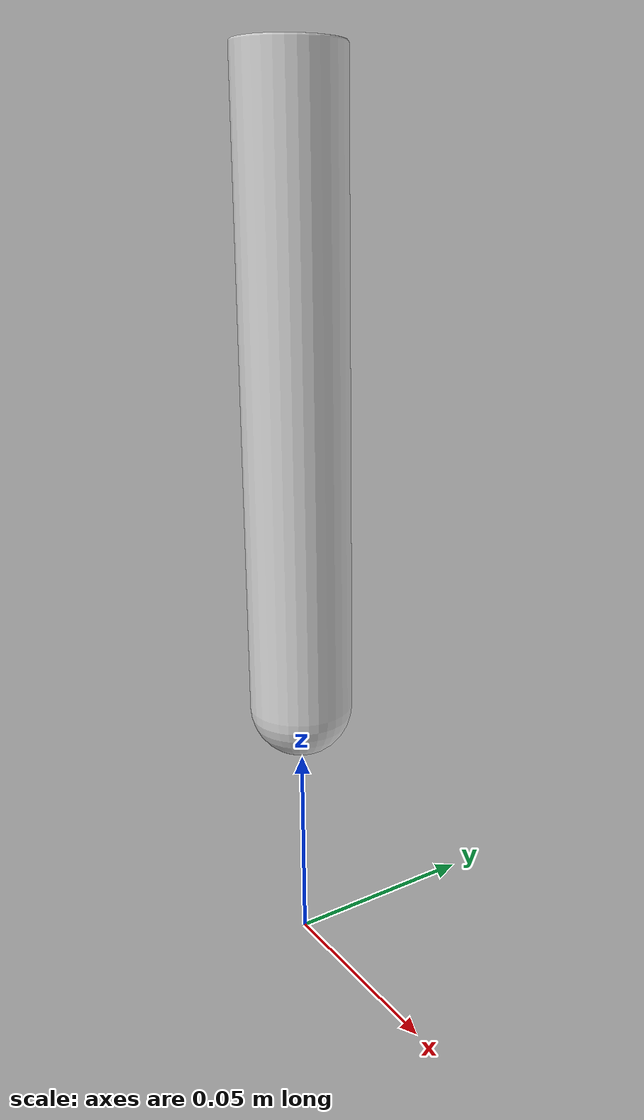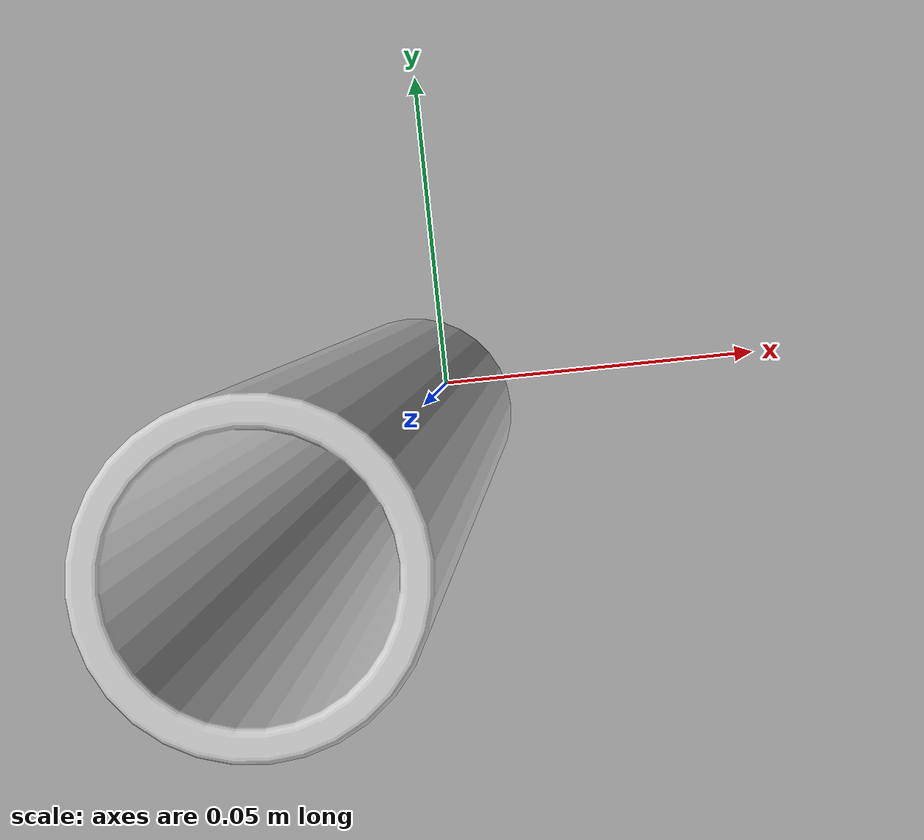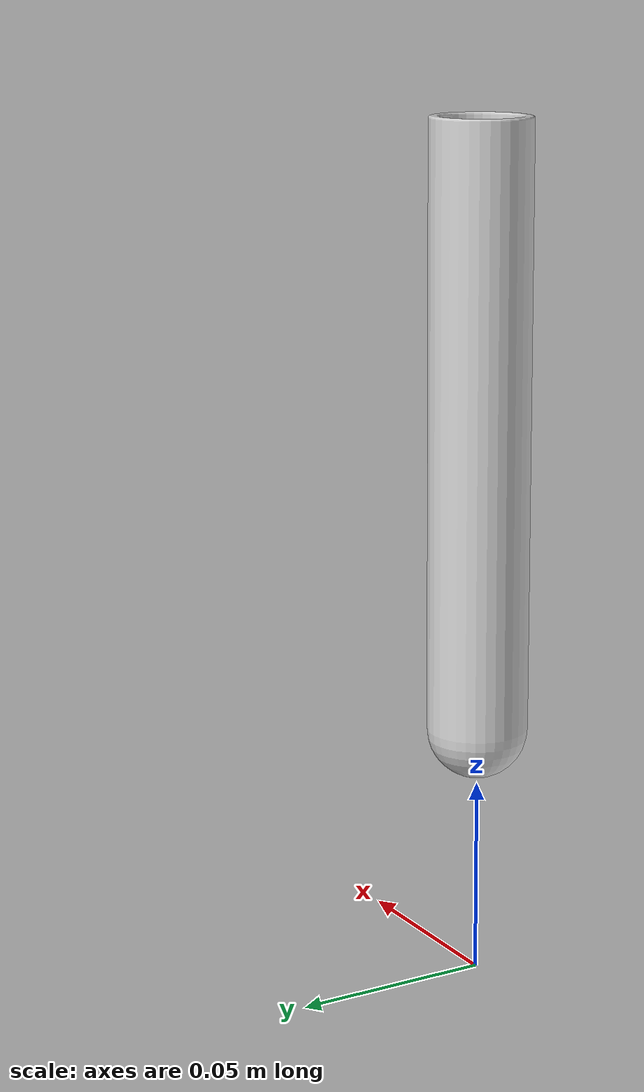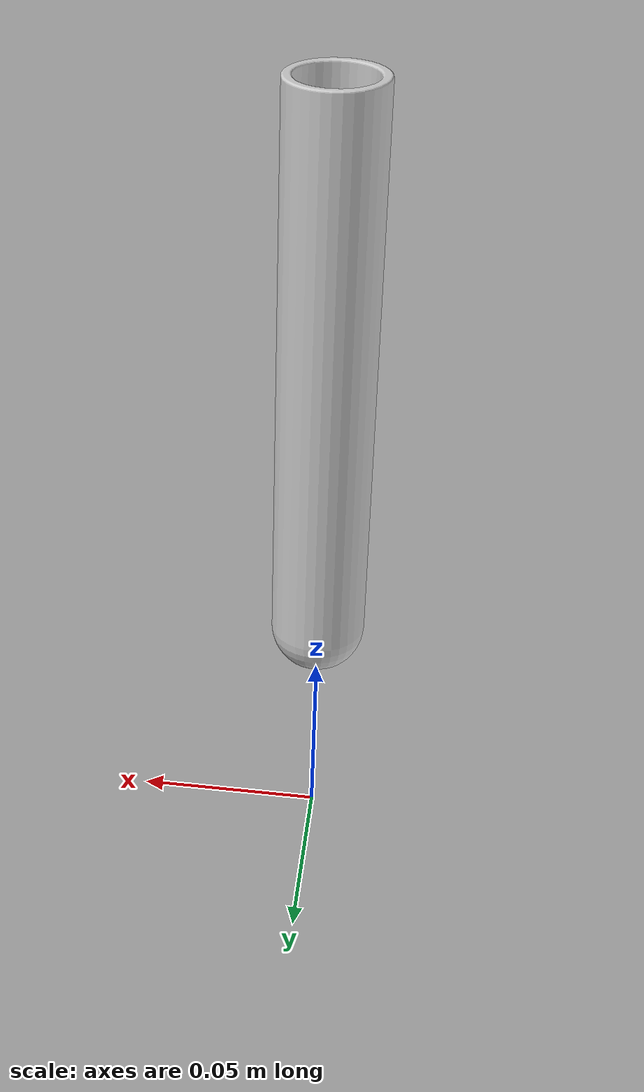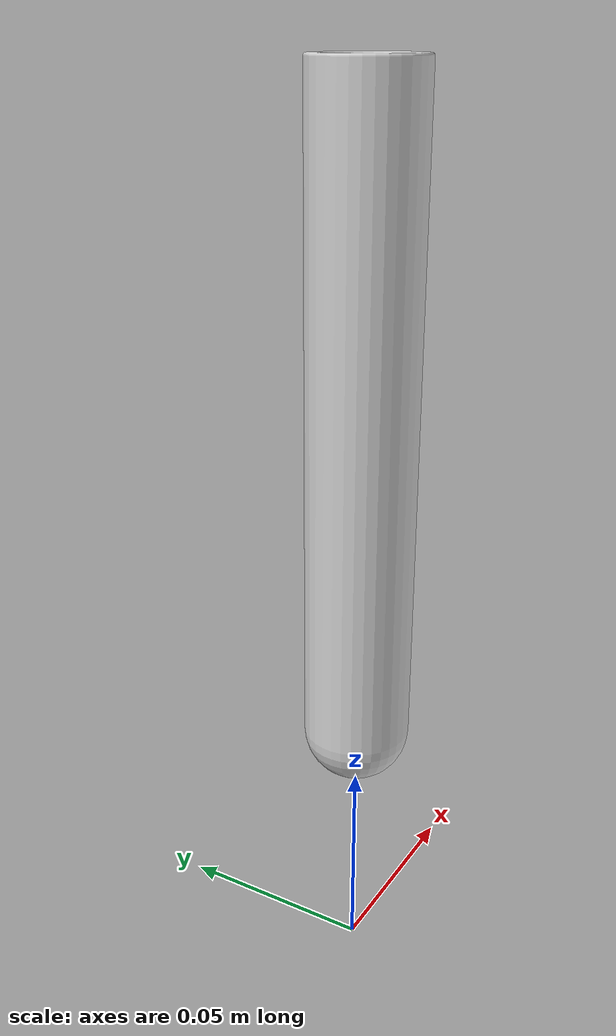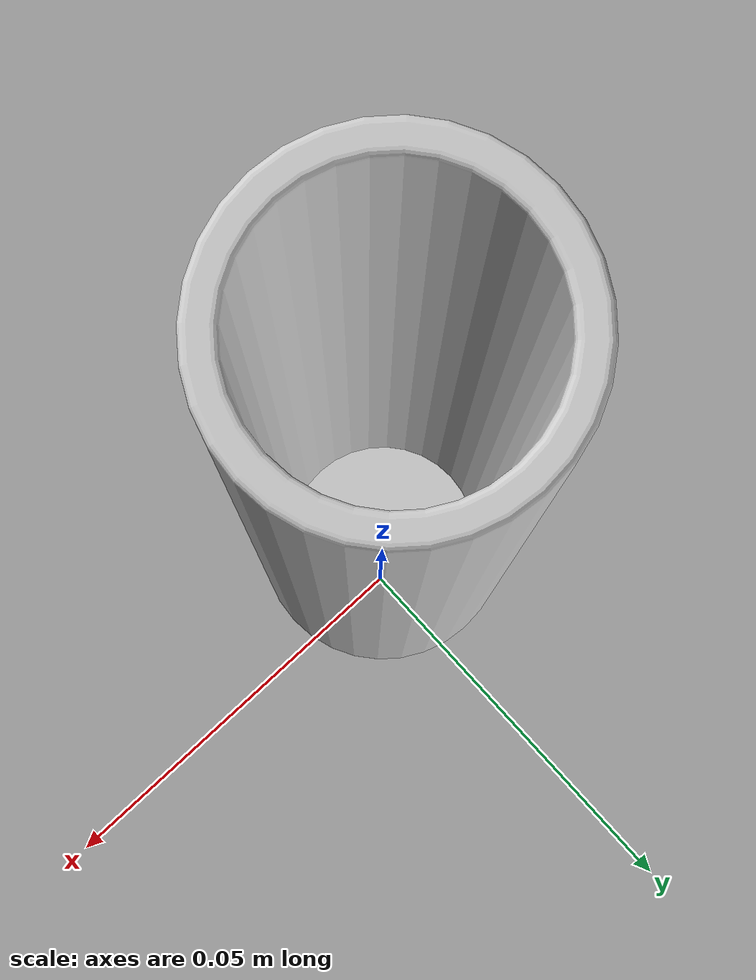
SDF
<?xml version="1.0" ?>
<sdf version="1.5">
  <model name="test_tube">
    <static>1</static>
    <link name="link">
      <pose>0 0 0.065 0 0 0</pose>
      <collision name="collision">
        <geometry>
          <mesh>
            <uri>model://test_tube/meshes/test_tube.dae</uri>
          </mesh>
        </geometry>
      </collision>
      <visual name="visual">
        <geometry>
          <mesh>
            <uri>model://test_tube/meshes/test_tube.dae</uri>
          </mesh>
        </geometry>
        <transparency>0</transparency>
      </visual>
    </link>
  </model>
</sdf>
